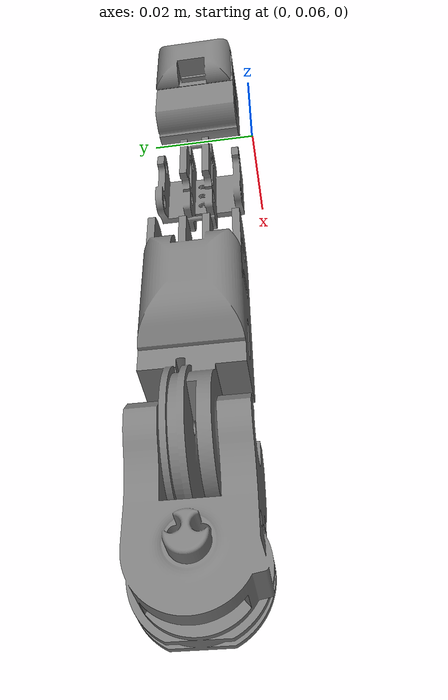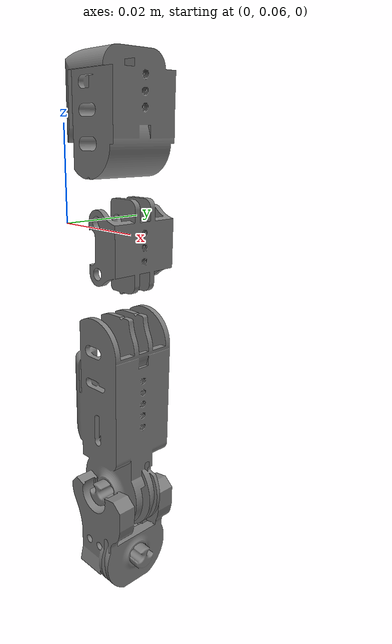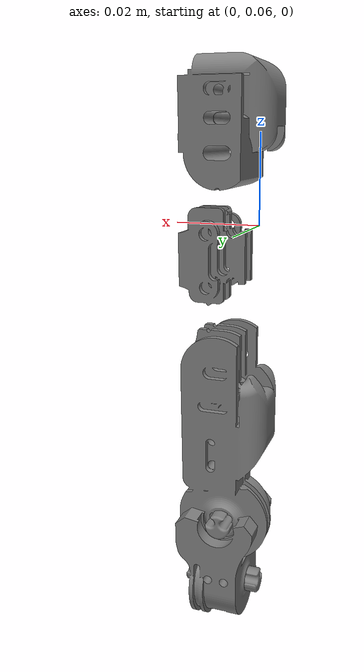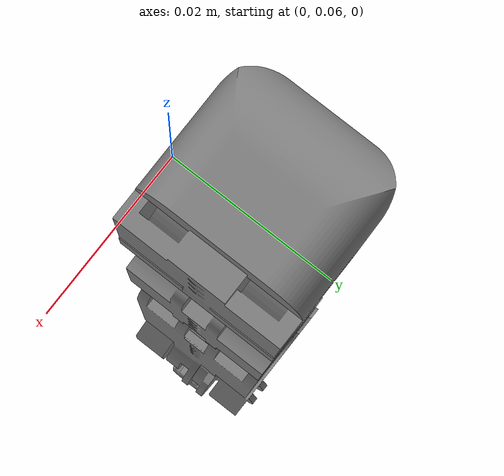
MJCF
<mujoco model="mid_finger">
  <compiler angle="radian" autolimits="true" />
  <asset>
    <mesh name="mcp_yoke_mid" file="meshes/mcp_yoke_mid.stl" scale="0.001 0.001 0.001" />
    <mesh name="mid_proximal" file="meshes/mid_proximal.stl" scale="0.001 0.001 0.001" />
    <mesh name="mid_mid" file="meshes/mid_mid.stl" scale="0.001 0.001 0.001" />
    <mesh name="mid_distal" file="meshes/mid_distal.stl" scale="0.001 0.001 0.001" />
  </asset>
  <worldbody>
    <body name="mcp_yoke_mid" pos="0 0 0" euler="0 0 0">
      <joint name="palm_index_mcp-spread" type="hinge" axis="-1.000000309448954 1.3322676295501878e-15 -1.6706596603924724e-16" pos="0.013721265458044257 0.07174263415985777 -0.08583799999999948" range="-0.785398 0.959931" />
      <geom name="mcp_yoke_mid_geom" type="mesh" mesh="mcp_yoke_mid" />
      <inertial mass="0.03024597412328188" pos="0.00478423500704521 0.07167707321755225 -0.0811281260621632" fullinertia="2.773707481305329e-06 2.3712014589828393e-06 1.7070672426162132e-06 -4.078616937028515e-09 -1.0741947470955195e-08 -1.628034187846067e-08" />
      <body name="mid_proximal" pos="0.01200000000000017 0.06195000000000005 -0.2200000000000001" euler="-5.55111512312598e-17 -6.106226635438354e-16 -2.823458759444544e-31">
        <joint name="mcp_yoke_mid_Umdrehung-20" type="hinge" axis="-2.220446049250313e-16 -1.0000003094489507 -2.3850143627958442e-15" pos="-0.008278638641495976 0.01794274691981418 0.15216199999999938" range="-1.22173 2.094395" />
        <geom name="mid_proximal_geom" type="mesh" mesh="mid_proximal" />
        <inertial mass="0.06800703608404807" pos="-0.008372598721848304 0.009921313259737826 0.17017889847514125" fullinertia="1.3052796326683888e-05 1.3452574228751831e-05 3.142849324513793e-06 3.4013654635755286e-09 6.896057835084394e-08 1.2510585089932944e-08" />
        <body name="mid_mid" pos="2.882859547354011e-07 9.285953791431709e-05 6.191297500029414e-05" euler="4.551914400963141e-15 1.6653345369377217e-16 -1.665334536937748e-16">
          <joint name="mid_proximal_Umdrehung-15" type="hinge" axis="-2.220446049250313e-16 -1.0000003094489502 2.1669014467524327e-15" pos="-0.004854408786164249 0.012725484538641807 0.19880008702499896" range="-0.349066 1.919862" />
          <geom name="mid_mid_geom" type="mesh" mesh="mid_mid" />
          <inertial mass="0.007392920149988077" pos="-0.0042576986353489825 0.009825033885755305 0.21488529761084846" fullinertia="3.4547358875117764e-07 2.479106819973566e-07 2.540763378737801e-07 -1.0565975754479841e-13 5.112007271849215e-10 2.2763222209935178e-12" />
          <body name="mid_distal" pos="8.881784197001253e-17 9.772564701915343e-16 -1.800000000011793e-05" euler="4.218847493575595e-15 -1.6653345369377356e-16 1.665334536937715e-16">
            <joint name="mid_mid_Umdrehung-16" type="hinge" axis="-2.220446049250313e-16 -1.00000030944895 6.385750245845952e-15" pos="-0.00827963403423197 0.00982493252221462 0.22401808702499884" range="-0.349066 1.919862" />
            <geom name="mid_distal_geom" type="mesh" mesh="mid_distal" />
            <inertial mass="0.03538327422230648" pos="-0.009139596618336314 0.009825016665792155 0.241898363127978" fullinertia="2.447596990761133e-06 2.507393274308613e-06 1.6308149696362853e-06 -4.4390101417364335e-12 1.9422665699498528e-07 -1.9258460710365306e-12" />
          </body>
        </body>
      </body>
    </body>
  </worldbody>
</mujoco>
